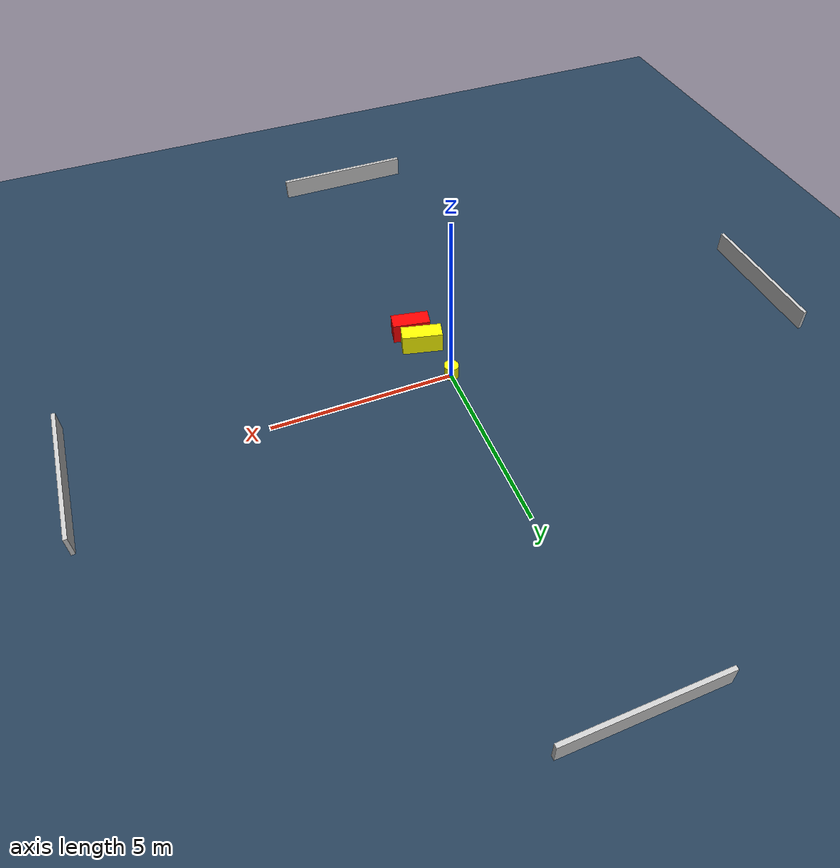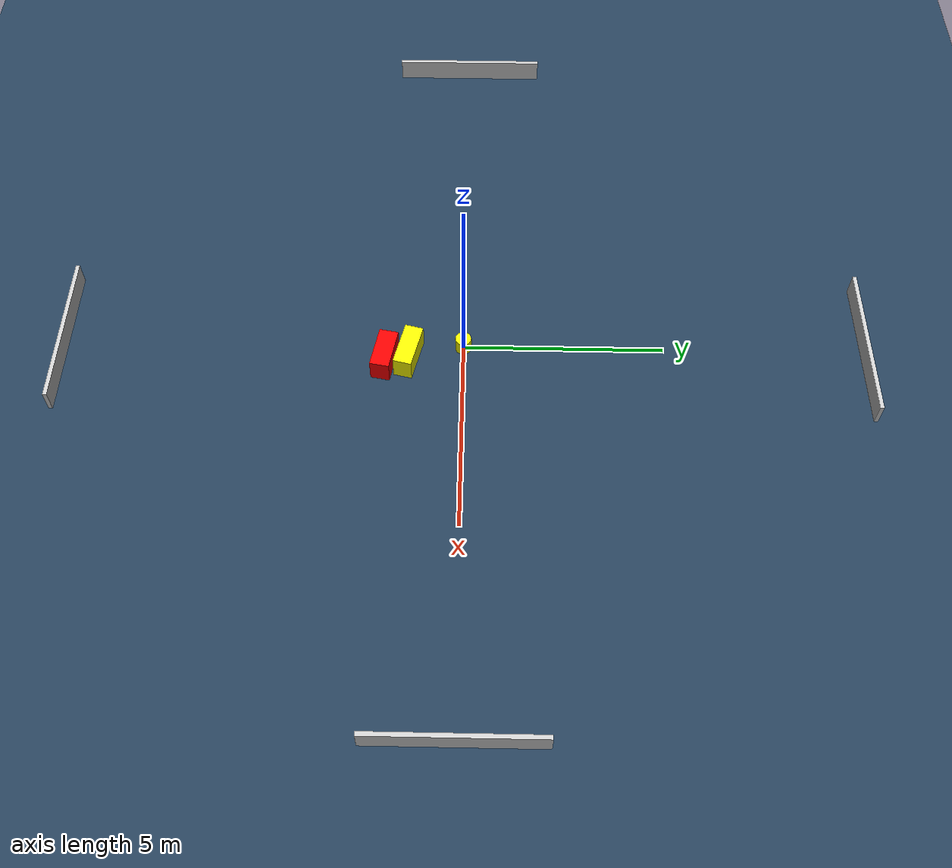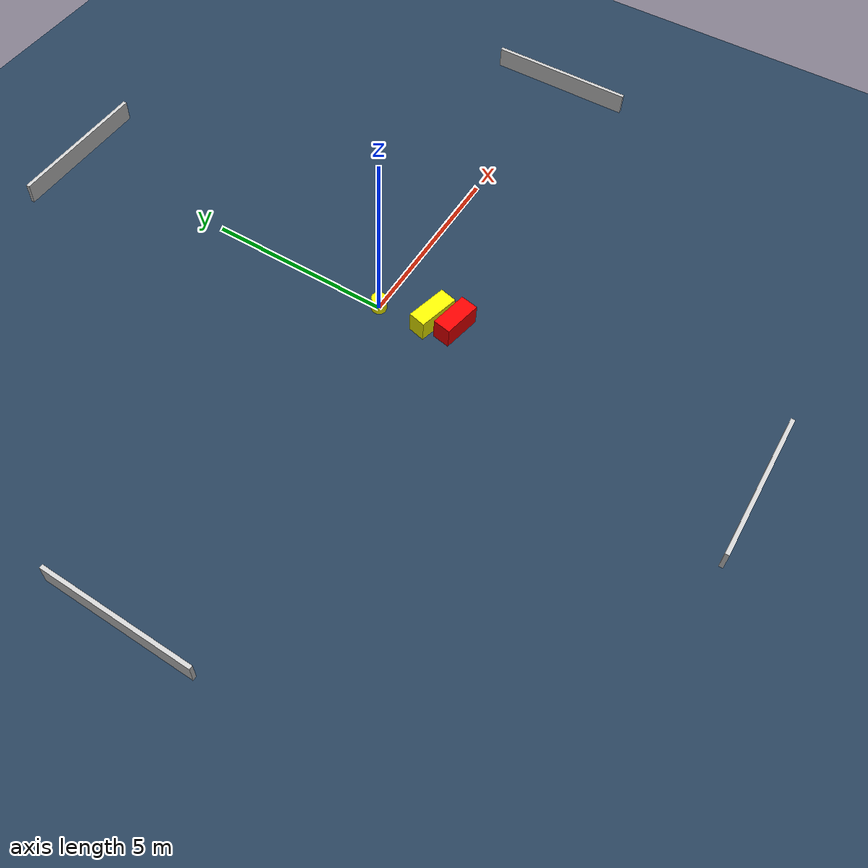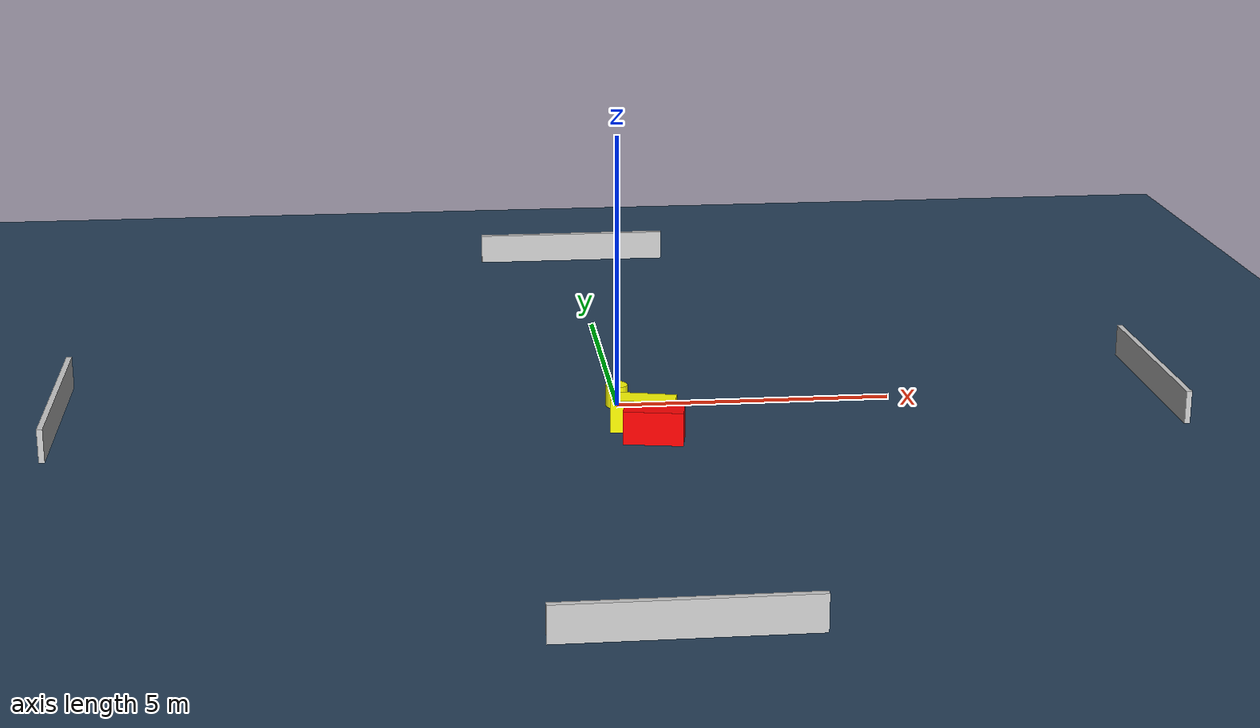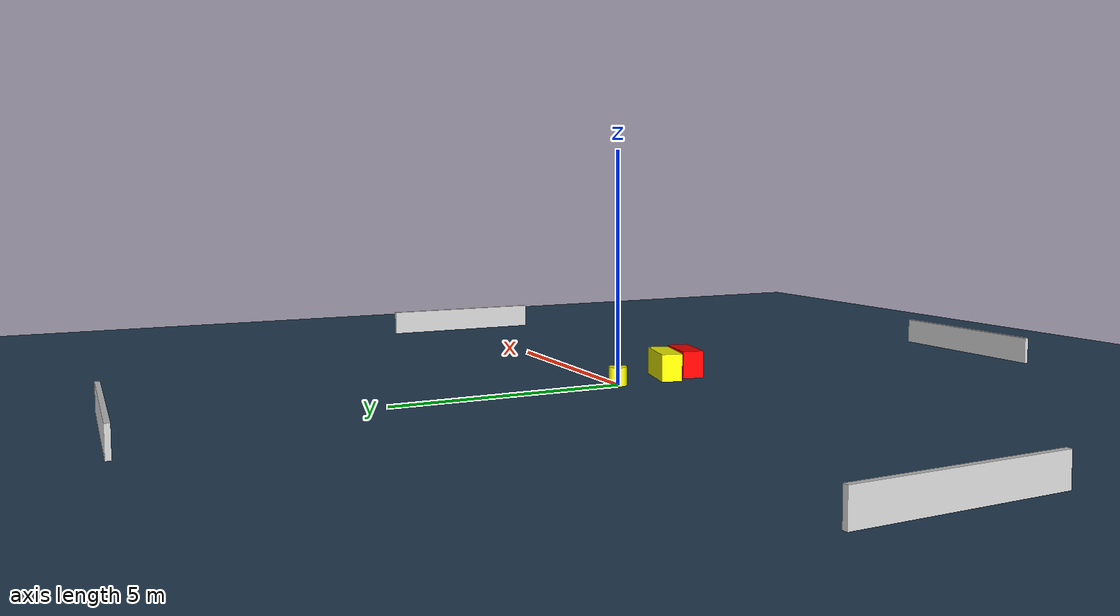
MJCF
<?xml version="1.0" ?>
<mujoco model="generated_environment">
  <option timestep="0.01" integrator="RK4" cone="elliptic"/>
  <default>
    <geom density="1"/>
  </default>
  <asset>
    <texture builtin="gradient" height="3072" name="skybox" rgb1="0.3 0.5 0.7" rgb2="0 0 0" type="skybox" width="512"/>
    <texture builtin="checker" height="300" name="groundplane" rgb1="0.2 0.3 0.4" rgb2="0.1 0.2 0.3" type="2d" width="300"/>
    <material name="groundplane" reflectance="0.2" texrepeat="5 5" texture="groundplane"/>
  </asset>
  <worldbody>
    <light dir="0 0 -1" directional="true" pos="0 0 1.5"/>
    <geom condim="3" friction="0.5 0.005 0.001" material="groundplane" name="floor" pos="0 0 0" size="0 0 0.05" type="plane"/>
    <body name="walls">
      <geom name="wall_1" condim="4" pos="-10.0 0.0 0.3" rgba="0.800000011920929 0.800000011920929 0.800000011920929 1.0" size="0.05 2.0 0.3" type="box"/>
      <geom name="wall_2" condim="4" pos="10.0 0.0 0.3" rgba="0.800000011920929 0.800000011920929 0.800000011920929 1.0" size="0.05 2.0 0.3" type="box"/>
      <geom name="wall_3" condim="4" pos="0.0 -10.0 0.3" rgba="0.800000011920929 0.800000011920929 0.800000011920929 1.0" size="2.0 0.05 0.3" type="box"/>
      <geom name="wall_4" condim="4" pos="0.0 10.0 0.3" rgba="0.800000011920929 0.800000011920929 0.800000011920929 1.0" size="2.0 0.05 0.3" type="box"/>
    </body>
    <body name="robot">
      <joint name="joint_x" type="slide" pos="0 0 0" axis="1 0 0"/>
      <joint name="joint_y" type="slide" pos="0 0 0" axis="0 1 0"/>
      <geom name="robot" type="cylinder" pos="0.0 0.0 0.2" size="0.2 0.2 0.0" mass="5.0" friction="1.0 0.005 0.0001" condim="4" rgba="1.0 1.0 0.0 1.0"/>
    </body>
    <body name="obstacle_1_movable">
      <geom name="obstacle_1_movable" condim="4" pos="0.34374904358522373 -1.3550167428160231 0.3" euler="0 0 166.3013980317772" friction="0.0 0.005 0.001" rgba="1.0 1.0 0.0 1.0" size="0.5630475855451006 0.2316689353682038 0.3" type="box" mass="0.1"/>
      <joint type="free"/>
    </body>
    <body name="obstacle_2_static">
      <geom name="obstacle_2_static" condim="4" pos="0.4571027539848101 -1.9441573472362659 0.3" euler="0 0 169.32555465889362" friction="0.0 0.005 0.001" rgba="1.0 0.0 0.0 1.0" size="0.5263027894974656 0.2399419115517495 0.3" type="box"/>
    </body>
  </worldbody>
  <actuator>
    <motor name="actuator_x" joint="joint_x" gear="1" ctrlrange="-1 1"/>
    <motor name="actuator_y" joint="joint_y" gear="1" ctrlrange="-1 1"/>
  </actuator>
</mujoco>
